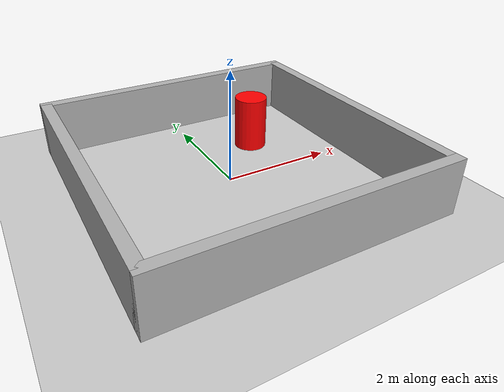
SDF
<?xml version="1.0" ?>
<sdf version="1.8">
  <world name="swarm_world">
    <physics name="1ms" type="ignored">
      <max_step_size>0.001</max_step_size>
      <real_time_factor>1.0</real_time_factor>
    </physics>

    <plugin
      filename="libignition-gazebo-physics-system.so"
      name="ignition::gazebo::systems::Physics">
    </plugin>
    <plugin
      filename="libignition-gazebo-user-commands-system.so"
      name="ignition::gazebo::systems::UserCommands">
    </plugin>
    <plugin
      filename="libignition-gazebo-scene-broadcaster-system.so"
      name="ignition::gazebo::systems::SceneBroadcaster">
    </plugin>

    <light type="directional" name="sun">
      <cast_shadows>true</cast_shadows>
      <pose>0 0 10 0 0 0</pose>
      <diffuse>0.8 0.8 0.8 1</diffuse>
      <specular>0.2 0.2 0.2 1</specular>
      <attenuation>
        <range>1000</range>
        <constant>0.9</constant>
        <linear>0.01</linear>
        <quadratic>0.001</quadratic>
      </attenuation>
      <direction>-0.5 0.1 -0.9</direction>
    </light>

    <model name="ground_plane">
      <static>true</static>
      <link name="link">
        <collision name="collision">
          <geometry>
            <plane>
              <normal>0 0 1</normal>
              <size>100 100</size>
            </plane>
          </geometry>
        </collision>
        <visual name="visual">
          <geometry>
            <plane>
              <normal>0 0 1</normal>
              <size>100 100</size>
            </plane>
          </geometry>
          <material>
            <ambient>0.8 0.8 0.8 1</ambient>
            <diffuse>0.8 0.8 0.8 1</diffuse>
            <specular>0.8 0.8 0.8 1</specular>
          </material>
        </visual>
      </link>
    </model>

    <model name="wall_1">
      <static>true</static>
      <pose>2.5 0 0.5 0 0 0</pose>
      <link name="box_link">
        <visual name="visual">
          <geometry><box><size>0.2 5.0 1.0</size></box></geometry>
          <material><ambient>0.3 0.3 0.3 1</ambient><diffuse>0.7 0.7 0.7 1</diffuse></material>
        </visual>
        <collision name="collision">
          <geometry><box><size>0.2 5.0 1.0</size></box></geometry>
        </collision>
      </link>
    </model>

    <model name="wall_2">
      <static>true</static>
      <pose>-2.5 0 0.5 0 0 0</pose>
      <link name="box_link">
        <visual name="visual">
          <geometry><box><size>0.2 5.0 1.0</size></box></geometry>
          <material><ambient>0.3 0.3 0.3 1</ambient><diffuse>0.7 0.7 0.7 1</diffuse></material>
        </visual>
        <collision name="collision">
          <geometry><box><size>0.2 5.0 1.0</size></box></geometry>
        </collision>
      </link>
    </model>

    <model name="wall_3">
      <static>true</static>
      <pose>0 2.5 0.5 0 0 0</pose>
      <link name="box_link">
        <visual name="visual">
          <geometry><box><size>5.2 0.2 1.0</size></box></geometry>
          <material><ambient>0.3 0.3 0.3 1</ambient><diffuse>0.7 0.7 0.7 1</diffuse></material>
        </visual>
        <collision name="collision">
          <geometry><box><size>5.2 0.2 1.0</size></box></geometry>
        </collision>
      </link>
    </model>

    <model name="wall_4">
      <static>true</static>
      <pose>0 -2.5 0.5 0 0 0</pose>
      <link name="box_link">
        <visual name="visual">
          <geometry><box><size>5.2 0.2 1.0</size></box></geometry>
          <material><ambient>0.3 0.3 0.3 1</ambient><diffuse>0.7 0.7 0.7 1</diffuse></material>
        </visual>
        <collision name="collision">
          <geometry><box><size>5.2 0.2 1.0</size></box></geometry>
        </collision>
      </link>
    </model>

    <model name="obstacle_1">
      <static>true</static>
      <pose>1.0 1.0 0.5 0 0 0</pose>
      <link name="cylinder_link">
        <visual name="visual">
          <geometry><cylinder><radius>0.3</radius><length>1.0</length></cylinder></geometry>
          <material><ambient>1.0 0.0 0.0 1</ambient><diffuse>1.0 0.0 0.0 1</diffuse></material>
        </visual>
        <collision name="collision">
          <geometry><cylinder><radius>0.3</radius><length>1.0</length></cylinder></geometry>
        </collision>
      </link>
    </model>

  </world>
</sdf>
